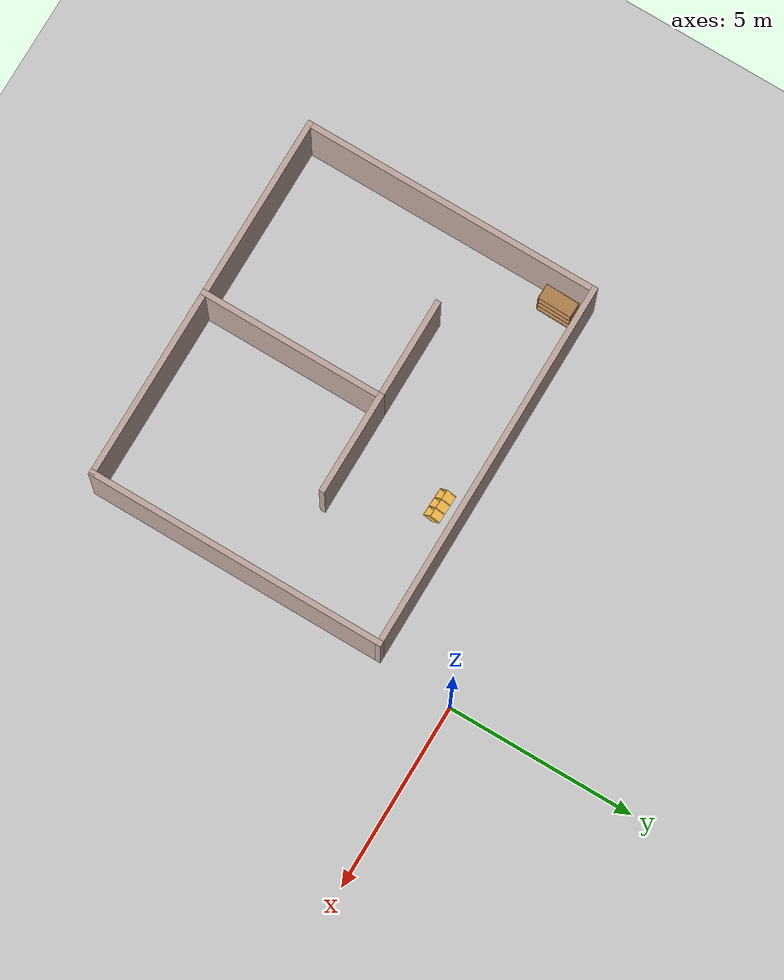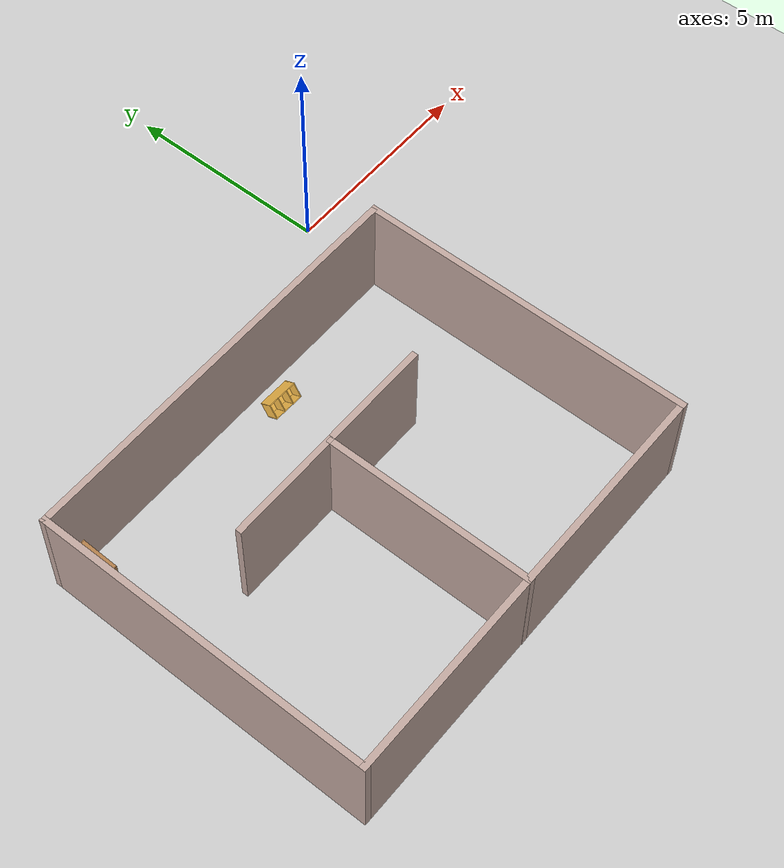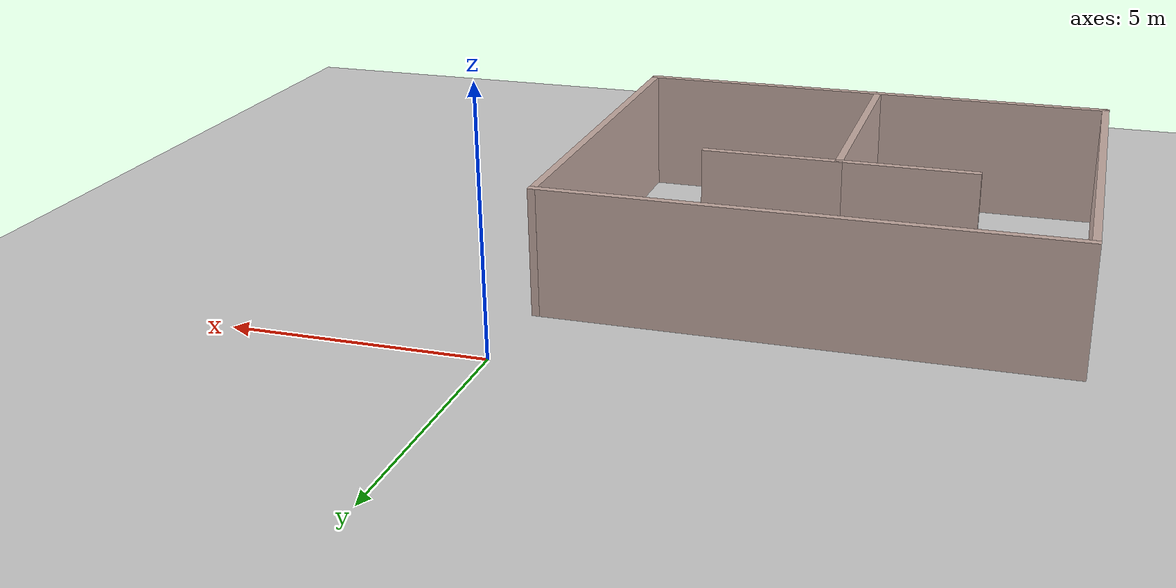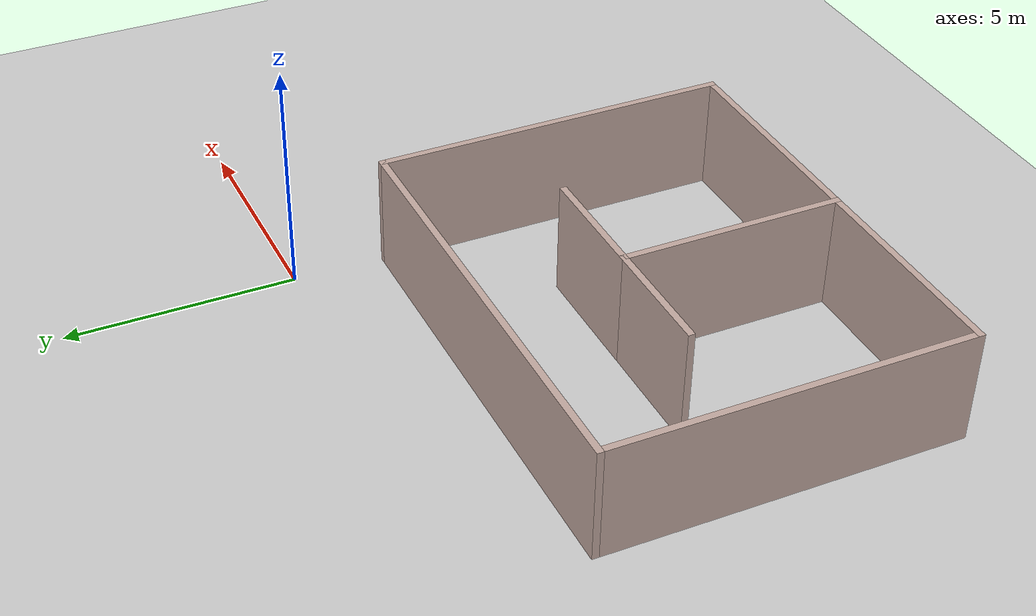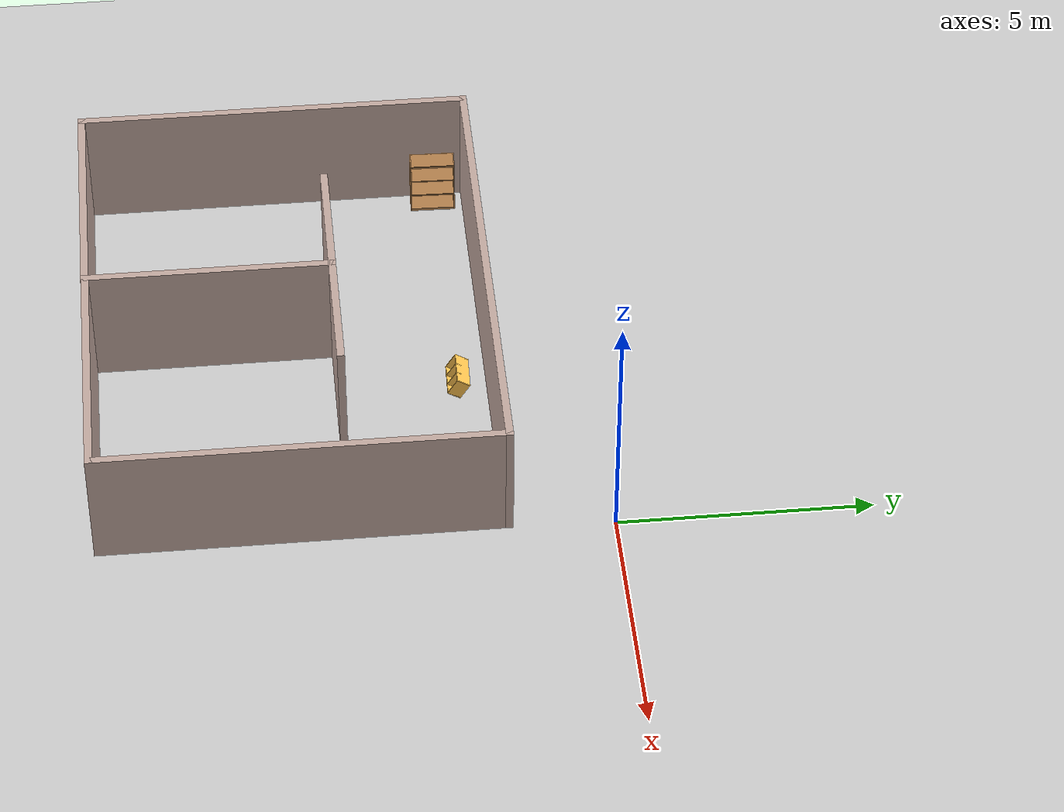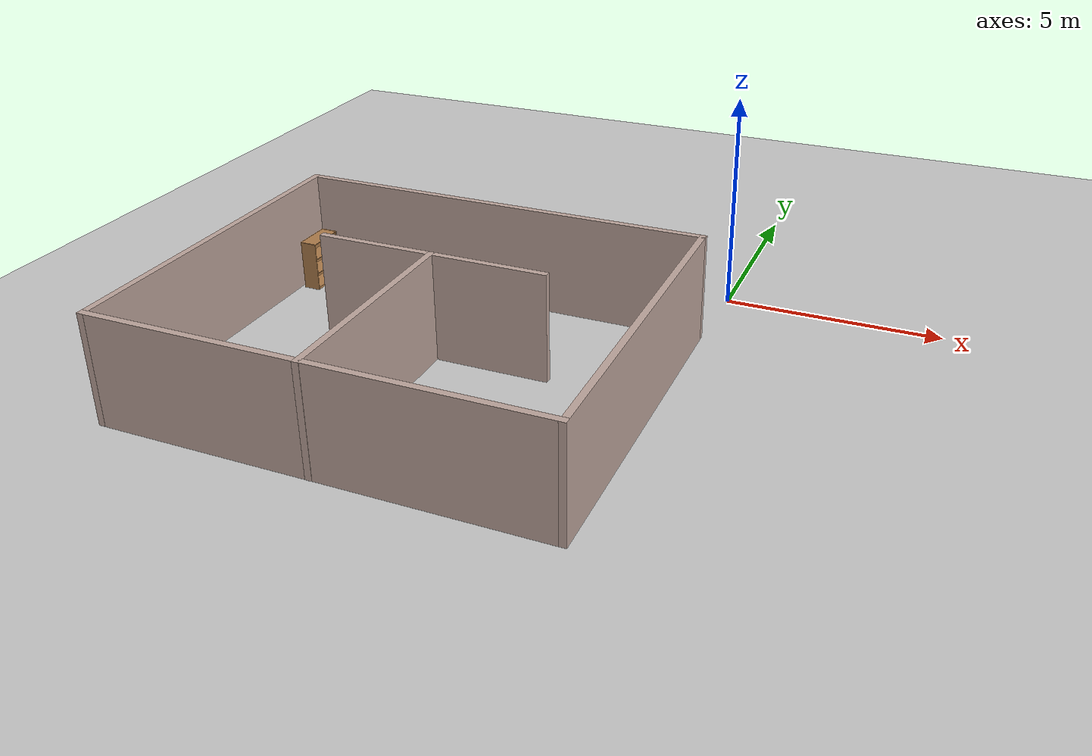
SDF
<sdf version="1.6">
 <world name="default">
  <model name="ground_plane">
   <static>1</static>
   <link name="link">
    <collision name="collision">
     <geometry><plane><normal>0 0 1</normal><size>100 100</size></plane></geometry>
     <surface><friction><ode><mu>100</mu><mu2>50</mu2></ode></friction></surface>
    </collision>
    <visual name="visual">
     <cast_shadows>0</cast_shadows>
     <geometry><plane><normal>0 0 1</normal><size>100 100</size></plane></geometry>
     <material>
      <script><uri>file://media/materials/scripts/gazebo.material</uri><name>Gazebo/Grey</name></script>
     </material>
    </visual>
   </link>
  </model>
  <model name="empty_room_colored_walls">
   <pose>-5.06103 -5.97507 0 0 -0 0</pose>
   <link name="Wall_62">
    <collision name="Wall_62_Collision">
     <geometry><box><size>10 0.15 2.5</size></box></geometry>
     <pose>0 0 1.25 0 -0 0</pose>
    </collision>
    <visual name="Wall_62_Visual">
     <pose>0 0 1.25 0 -0 0</pose>
     <geometry><box><size>10 0.15 2.5</size></box></geometry>
     <material>
      <script><uri>file://media/materials/scripts/gazebo.material</uri><name>Gazebo/Grey</name></script>
      <ambient>0.760784 0.662745 0.627451 1</ambient>
     </material>
    </visual>
    <pose>0 -3.92179 0 0 -0 0</pose>
   </link>
   <link name="Wall_63">
    <collision name="Wall_63_Collision">
     <geometry><box><size>8 0.15 2.5</size></box></geometry>
     <pose>0 0 1.25 0 -0 0</pose>
    </collision>
    <visual name="Wall_63_Visual">
     <pose>0 0 1.25 0 -0 0</pose>
     <geometry><box><size>8 0.15 2.5</size></box></geometry>
     <material>
      <script><uri>file://media/materials/scripts/gazebo.material</uri><name>Gazebo/Grey</name></script>
      <ambient>0.760784 0.662745 0.627451 1</ambient>
     </material>
    </visual>
    <pose>4.925 0.003206 0 0 -0 1.5708</pose>
   </link>
   <link name="Wall_64">
    <collision name="Wall_64_Collision">
     <geometry><box><size>10 0.15 2.5</size></box></geometry>
     <pose>0 0 1.25 0 -0 0</pose>
    </collision>
    <visual name="Wall_64_Visual">
     <pose>0 0 1.25 0 -0 0</pose>
     <geometry><box><size>10 0.15 2.5</size></box></geometry>
     <material>
      <script><uri>file://media/materials/scripts/gazebo.material</uri><name>Gazebo/Grey</name></script>
      <ambient>0.760784 0.662745 0.627451 1</ambient>
     </material>
    </visual>
    <pose>0 3.92821 0 0 -0 3.14159</pose>
   </link>
   <link name="Wall_65">
    <collision name="Wall_65_Collision">
     <geometry><box><size>8 0.15 2.5</size></box></geometry>
     <pose>0 0 1.25 0 -0 0</pose>
    </collision>
    <visual name="Wall_65_Visual">
     <pose>0 0 1.25 0 -0 0</pose>
     <geometry><box><size>8 0.15 2.5</size></box></geometry>
     <material>
      <script><uri>file://media/materials/scripts/gazebo.material</uri><name>Gazebo/Grey</name></script>
      <ambient>0.760784 0.662745 0.627451 1</ambient>
     </material>
    </visual>
    <pose>-4.925 0.003206 0 0 0 -1.5708</pose>
   </link>
   <link name="Wall_70">
    <collision name="Wall_70_Collision">
     <geometry><box><size>5 0.15 2.5</size></box></geometry>
     <pose>0 0 1.25 0 -0 0</pose>
    </collision>
    <visual name="Wall_70_Visual">
     <pose>0 0 1.25 0 -0 0</pose>
     <geometry><box><size>5 0.15 2.5</size></box></geometry>
     <material>
      <script><uri>file://media/materials/scripts/gazebo.material</uri><name>Gazebo/Grey</name></script>
      <ambient>0.760784 0.662745 0.627451 1</ambient>
     </material>
    </visual>
    <pose>-0.121943 -1.50321 0 0 -0 1.5708</pose>
   </link>
   <link name="Wall_71">
    <collision name="Wall_71_Collision">
     <geometry><box><size>2.75 0.15 2.5</size></box></geometry>
     <pose>0 0 1.25 0 -0 0</pose>
    </collision>
    <visual name="Wall_71_Visual">
     <pose>0 0 1.25 0 -0 0</pose>
     <geometry><box><size>2.75 0.15 2.5</size></box></geometry>
     <material>
      <script><uri>file://media/materials/scripts/gazebo.material</uri><name>Gazebo/Grey</name></script>
      <ambient>0.760784 0.662745 0.627451 1</ambient>
     </material>
    </visual>
    <pose>1.17806 0.921794 0 0 -0 0</pose>
   </link>
   <link name="Wall_73">
    <collision name="Wall_73_Collision">
     <geometry><box><size>2.75 0.15 2.5</size></box></geometry>
     <pose>0 0 1.25 0 -0 0</pose>
    </collision>
    <visual name="Wall_73_Visual">
     <pose>0 0 1.25 0 -0 0</pose>
     <geometry><box><size>2.75 0.15 2.5</size></box></geometry>
     <material>
      <script><uri>file://media/materials/scripts/gazebo.material</uri><name>Gazebo/Grey</name></script>
      <ambient>0.760784 0.662745 0.627451 1</ambient>
     </material>
    </visual>
    <pose>-1.42194 0.921794 0 0 -0 3.14159</pose>
   </link>
   <static>1</static>
  </model>
  <model name="bookshelf">
   <static>1</static>
   <link name="link">
    <inertial><mass>1</mass></inertial>
    <collision name="back">
     <pose>0 0.005 0.6 0 -0 0</pose>
     <geometry><box><size>0.9 0.01 1.2</size></box></geometry>
    </collision>
    <visual name="visual1">
     <pose>0 0.005 0.6 0 -0 0</pose>
     <geometry><box><size>0.9 0.01 1.2</size></box></geometry>
     <material>
      <script><uri>file://media/materials/scripts/gazebo.material</uri><name>Gazebo/Wood</name></script>
     </material>
    </visual>
    <collision name="left_side">
     <pose>0.45 -0.195 0.6 0 -0 0</pose>
     <geometry><box><size>0.02 0.4 1.2</size></box></geometry>
    </collision>
    <visual name="visual2">
     <pose>0.45 -0.195 0.6 0 -0 0</pose>
     <geometry><box><size>0.02 0.4 1.2</size></box></geometry>
     <material>
      <script><uri>file://media/materials/scripts/gazebo.material</uri><name>Gazebo/Wood</name></script>
     </material>
    </visual>
    <collision name="right_side">
     <pose>-0.45 -0.195 0.6 0 -0 0</pose>
     <geometry><box><size>0.02 0.4 1.2</size></box></geometry>
    </collision>
    <visual name="visual3">
     <pose>-0.45 -0.195 0.6 0 -0 0</pose>
     <geometry><box><size>0.02 0.4 1.2</size></box></geometry>
     <material>
      <script><uri>file://media/materials/scripts/gazebo.material</uri><name>Gazebo/Wood</name></script>
     </material>
    </visual>
    <collision name="bottom">
     <pose>0 -0.195 0.03 0 -0 0</pose>
     <geometry><box><size>0.88 0.4 0.06</size></box></geometry>
    </collision>
    <visual name="visual4">
     <pose>0 -0.195 0.03 0 -0 0</pose>
     <geometry><box><size>0.88 0.4 0.06</size></box></geometry>
     <material>
      <script><uri>file://media/materials/scripts/gazebo.material</uri><name>Gazebo/Wood</name></script>
     </material>
    </visual>
    <collision name="top">
     <pose>0 -0.195 1.19 0 -0 0</pose>
     <geometry><box><size>0.88 0.4 0.02</size></box></geometry>
    </collision>
    <visual name="visual5">
     <pose>0 -0.195 1.19 0 -0 0</pose>
     <geometry><box><size>0.88 0.4 0.02</size></box></geometry>
     <material>
      <script><uri>file://media/materials/scripts/gazebo.material</uri><name>Gazebo/Wood</name></script>
     </material>
    </visual>
    <collision name="low_shelf">
     <pose>0 -0.195 0.43 0 -0 0</pose>
     <geometry><box><size>0.88 0.4 0.02</size></box></geometry>
    </collision>
    <visual name="visual6">
     <pose>0 -0.195 0.43 0 -0 0</pose>
     <geometry><box><size>0.88 0.4 0.02</size></box></geometry>
     <material>
      <script><uri>file://media/materials/scripts/gazebo.material</uri><name>Gazebo/Wood</name></script>
     </material>
    </visual>
    <collision name="high_shelf">
     <pose>0 -0.195 0.8 0 -0 0</pose>
     <geometry><box><size>0.88 0.4 0.02</size></box></geometry>
    </collision>
    <visual name="visual7">
     <pose>0 -0.195 0.8 0 -0 0</pose>
     <geometry><box><size>0.88 0.4 0.02</size></box></geometry>
     <material>
      <script><uri>file://media/materials/scripts/gazebo.material</uri><name>Gazebo/Wood</name></script>
     </material>
    </visual>
   </link>
   <pose>-9.80012 -2.72902 0 0 -0 1.5503</pose>
  </model>
  <model name="Wall_Cabinet_15x30">
   <pose>-4.01501 -2.78927 0.13941 0 0.541069 1.54286</pose>
   <link name="Wall_0">
    <pose>0 0.374 0.192 0 -0 0</pose>
    <inertial>
     <mass>0.9882</mass>
     <inertia><ixx>0.0072</ixx><iyy>0.0194</iyy><izz>0.0122</izz><ixy>0</ixy><ixz>0</ixz><iyz>0</iyz></inertia>
    </inertial>
    <collision name="Wall_0_Collision"><geometry><box><size>0.296 0.02 0.384</size></box></geometry></collision>
    <visual name="Wall_0_Visual">
     <geometry><box><size>0.296 0.02 0.384</size></box></geometry>
     <material>
      <script><uri>file://media/materials/scripts/gazebo.material</uri><name>Gazebo/Grey</name></script>
      <ambient>1 0.764706 0.305882 1</ambient>
     </material>
    </visual>
   </link>
   <joint name="0_2" type="fixed">
    <pose>0 0 0.192 0 -0 0</pose>
    <parent>Wall_2</parent>
    <child>Wall_0</child>
    <axis>
     <xyz>0 0 1</xyz>
     <use_parent_model_frame>0</use_parent_model_frame>
     <limit><lower>-1e+16</lower><upper>1e+16</upper></limit>
    </axis>
   </joint>
   <joint name="0_4" type="fixed">
    <pose>0 0 -0.192 0 -0 0</pose>
    <parent>Wall_4</parent>
    <child>Wall_0</child>
    <axis>
     <xyz>0 0 1</xyz>
     <use_parent_model_frame>0</use_parent_model_frame>
     <limit><lower>-1e+16</lower><upper>1e+16</upper></limit>
    </axis>
   </joint>
   <joint name="0_15" type="fixed">
    <pose>0.148 0 0 0 -0 0</pose>
    <parent>Wall_15</parent>
    <child>Wall_0</child>
    <axis>
     <xyz>1 0 0</xyz>
     <use_parent_model_frame>0</use_parent_model_frame>
     <limit><lower>-1e+16</lower><upper>1e+16</upper></limit>
    </axis>
   </joint>
   <link name="Wall_11">
    <pose>0 -0.132768 0.192 0 -0 0</pose>
    <inertial>
     <mass>0.9882</mass>
     <inertia><ixx>0.0072</ixx><iyy>0.0194</iyy><izz>0.0122</izz><ixy>0</ixy><ixz>0</ixz><iyz>0</iyz></inertia>
    </inertial>
    <collision name="Wall_11_Collision"><geometry><box><size>0.296 0.02 0.384</size></box></geometry></collision>
    <visual name="Wall_11_Visual">
     <geometry><box><size>0.296 0.02 0.384</size></box></geometry>
     <material>
      <script><uri>file://media/materials/scripts/gazebo.material</uri><name>Gazebo/Grey</name></script>
      <ambient>1 0.764706 0.305882 1</ambient>
     </material>
    </visual>
   </link>
   <joint name="11_2" type="fixed">
    <pose>0 0 0.192 0 -0 0</pose>
    <parent>Wall_2</parent>
    <child>Wall_11</child>
    <axis>
     <xyz>0 0 1</xyz>
     <use_parent_model_frame>0</use_parent_model_frame>
     <limit><lower>-1e+16</lower><upper>1e+16</upper></limit>
    </axis>
   </joint>
   <joint name="11_4" type="fixed">
    <pose>0 0 -0.192 0 -0 0</pose>
    <parent>Wall_4</parent>
    <child>Wall_11</child>
    <axis>
     <xyz>0 0 1</xyz>
     <use_parent_model_frame>0</use_parent_model_frame>
     <limit><lower>-1e+16</lower><upper>1e+16</upper></limit>
    </axis>
   </joint>
   <joint name="11_15" type="fixed">
    <pose>0.148 0 0 0 -0 0</pose>
    <parent>Wall_15</parent>
    <child>Wall_11</child>
    <axis>
     <xyz>1 0 0</xyz>
     <use_parent_model_frame>0</use_parent_model_frame>
     <limit><lower>-1e+16</lower><upper>1e+16</upper></limit>
    </axis>
   </joint>
   <link name="Wall_15">
    <pose>0.138 0 0.19 0 -0 0</pose>
    <inertial>
     <mass>2.5241</mass>
     <inertia><ixx>0.0305</ixx><iyy>0.1229</iyy><izz>0.1532</izz><ixy>0</ixy><ixz>0</ixz><iyz>0</iyz></inertia>
    </inertial>
    <collision name="Wall_15_Collision"><geometry><box><size>0.02 0.764 0.38</size></box></geometry></collision>
    <visual name="Wall_15_Visual">
     <geometry><box><size>0.02 0.764 0.38</size></box></geometry>
     <material>
      <script><uri>file://media/materials/scripts/gazebo.material</uri><name>Gazebo/Grey</name></script>
      <ambient>1 0.764706 0.305882 1</ambient>
     </material>
    </visual>
   </link>
   <joint name="15_2" type="fixed">
    <pose>0 0 0.19 0 -0 0</pose>
    <parent>Wall_2</parent>
    <child>Wall_15</child>
    <axis>
     <xyz>0 0 1</xyz>
     <use_parent_model_frame>0</use_parent_model_frame>
     <limit><lower>-1e+16</lower><upper>1e+16</upper></limit>
    </axis>
   </joint>
   <joint name="15_4" type="fixed">
    <pose>0 0 -0.19 0 -0 0</pose>
    <parent>Wall_4</parent>
    <child>Wall_15</child>
    <axis>
     <xyz>0 0 1</xyz>
     <use_parent_model_frame>0</use_parent_model_frame>
     <limit><lower>-1e+16</lower><upper>1e+16</upper></limit>
    </axis>
   </joint>
   <link name="Wall_2">
    <pose>0 0 0.374 0 -0 0</pose>
    <inertial>
     <mass>1.9765</mass>
     <inertia><ixx>0.0145</ixx><iyy>0.1116</iyy><izz>0.0972</izz><ixy>0</ixy><ixz>0</ixz><iyz>0</iyz></inertia>
    </inertial>
    <collision name="Wall_2_Collision"><geometry><box><size>0.296 0.768 0.02</size></box></geometry></collision>
    <visual name="Wall_2_Visual">
     <geometry><box><size>0.296 0.768 0.02</size></box></geometry>
     <material>
      <script><uri>file://media/materials/scripts/gazebo.material</uri><name>Gazebo/Grey</name></script>
      <ambient>1 0.764706 0.305882 1</ambient>
     </material>
    </visual>
   </link>
   <link name="Wall_4">
    <pose>0 0 0.01 0 -0 0</pose>
    <inertial>
     <mass>1.9765</mass>
     <inertia><ixx>0.0145</ixx><iyy>0.1116</iyy><izz>0.0972</izz><ixy>0</ixy><ixz>0</ixz><iyz>0</iyz></inertia>
    </inertial>
    <collision name="Wall_4_Collision"><geometry><box><size>0.296 0.768 0.02</size></box></geometry></collision>
    <visual name="Wall_4_Visual">
     <geometry><box><size>0.296 0.768 0.02</size></box></geometry>
     <material>
      <script><uri>file://media/materials/scripts/gazebo.material</uri><name>Gazebo/Grey</name></script>
      <ambient>1 0.764706 0.305882 1</ambient>
     </material>
    </visual>
    <pose>-0.181124 0 0 0 0 -1.5708</pose>
   </link>
   <link name="Wall_6">
    <pose>0 -0.374 0.192 0 -0 0</pose>
    <inertial>
     <mass>0.9882</mass>
     <inertia><ixx>0.0072</ixx><iyy>0.0194</iyy><izz>0.0122</izz><ixy>0</ixy><ixz>0</ixz><iyz>0</iyz></inertia>
    </inertial>
    <collision name="Wall_6_Collision"><geometry><box><size>0.296 0.02 0.384</size></box></geometry></collision>
    <visual name="Wall_6_Visual">
     <geometry><box><size>0.296 0.02 0.384</size></box></geometry>
     <material>
      <script><uri>file://media/materials/scripts/gazebo.material</uri><name>Gazebo/Grey</name></script>
      <ambient>1 0.764706 0.305882 1</ambient>
     </material>
    </visual>
   </link>
   <joint name="6_2" type="fixed">
    <pose>0 0 0.192 0 -0 0</pose>
    <parent>Wall_2</parent>
    <child>Wall_6</child>
    <axis>
     <xyz>0 0 1</xyz>
     <use_parent_model_frame>0</use_parent_model_frame>
     <limit><lower>-1e+16</lower><upper>1e+16</upper></limit>
    </axis>
   </joint>
   <joint name="6_4" type="fixed">
    <pose>0 0 -0.192 0 -0 0</pose>
    <parent>Wall_4</parent>
    <child>Wall_6</child>
    <axis>
     <xyz>0 0 1</xyz>
     <use_parent_model_frame>0</use_parent_model_frame>
     <limit><lower>-1e+16</lower><upper>1e+16</upper></limit>
    </axis>
   </joint>
   <joint name="6_15" type="fixed">
    <pose>0.148 0 0 0 -0 0</pose>
    <parent>Wall_15</parent>
    <child>Wall_6</child>
    <axis>
     <xyz>1 0 0</xyz>
     <use_parent_model_frame>0</use_parent_model_frame>
     <limit><lower>-1e+16</lower><upper>1e+16</upper></limit>
    </axis>
   </joint>
   <link name="Wall_8">
    <pose>0 0.120833 0.192 0 -0 0</pose>
    <inertial>
     <mass>0.9882</mass>
     <inertia><ixx>0.0072</ixx><iyy>0.0194</iyy><izz>0.0122</izz><ixy>0</ixy><ixz>0</ixz><iyz>0</iyz></inertia>
    </inertial>
    <collision name="Wall_8_Collision"><geometry><box><size>0.296 0.02 0.384</size></box></geometry></collision>
    <visual name="Wall_8_Visual">
     <geometry><box><size>0.296 0.02 0.384</size></box></geometry>
     <material>
      <script><uri>file://media/materials/scripts/gazebo.material</uri><name>Gazebo/Grey</name></script>
      <ambient>1 0.764706 0.305882 1</ambient>
     </material>
    </visual>
   </link>
   <joint name="8_2" type="fixed">
    <pose>0 0 0.192 0 -0 0</pose>
    <parent>Wall_2</parent>
    <child>Wall_8</child>
    <axis>
     <xyz>0 0 1</xyz>
     <use_parent_model_frame>0</use_parent_model_frame>
     <limit><lower>-1e+16</lower><upper>1e+16</upper></limit>
    </axis>
   </joint>
   <joint name="8_4" type="fixed">
    <pose>0 0 -0.192 0 -0 0</pose>
    <parent>Wall_4</parent>
    <child>Wall_8</child>
    <axis>
     <xyz>0 0 1</xyz>
     <use_parent_model_frame>0</use_parent_model_frame>
     <limit><lower>-1e+16</lower><upper>1e+16</upper></limit>
    </axis>
   </joint>
   <joint name="8_15" type="fixed">
    <pose>0.148 0 0 0 -0 0</pose>
    <parent>Wall_15</parent>
    <child>Wall_8</child>
    <axis>
     <xyz>1 0 0</xyz>
     <use_parent_model_frame>0</use_parent_model_frame>
     <limit><lower>-1e+16</lower><upper>1e+16</upper></limit>
    </axis>
   </joint>
   <static>1</static>
  </model>
 </world>
</sdf>
